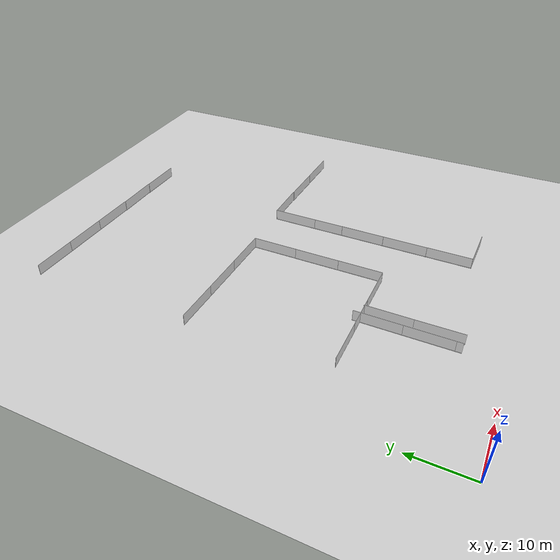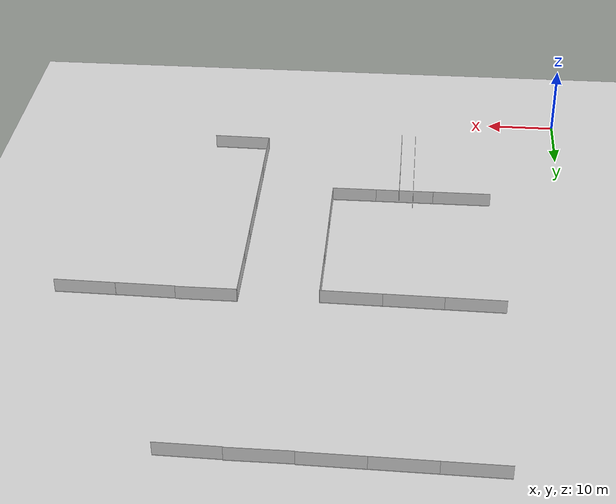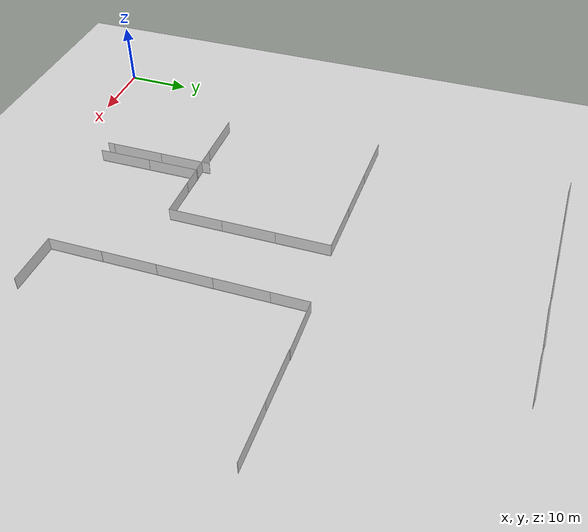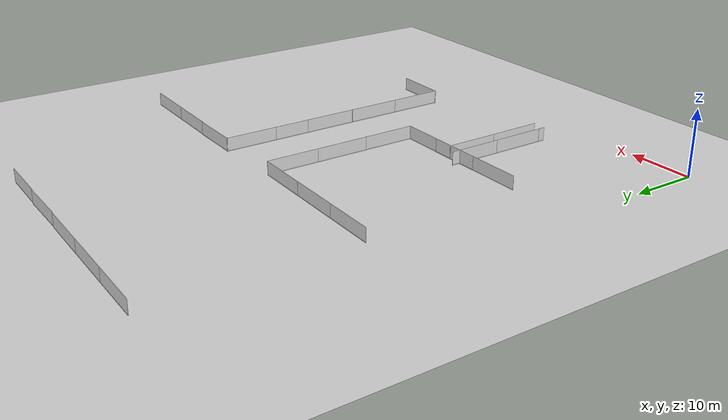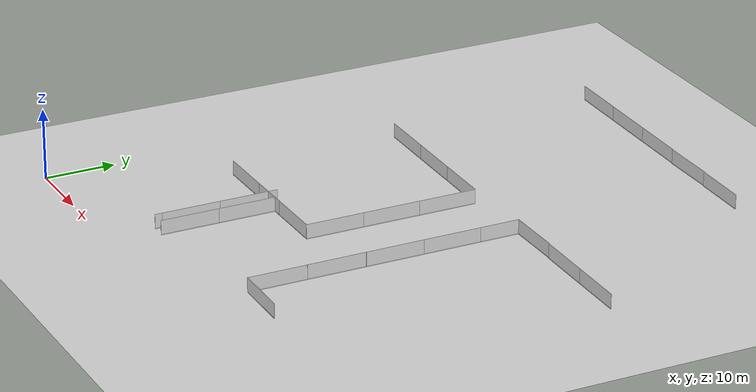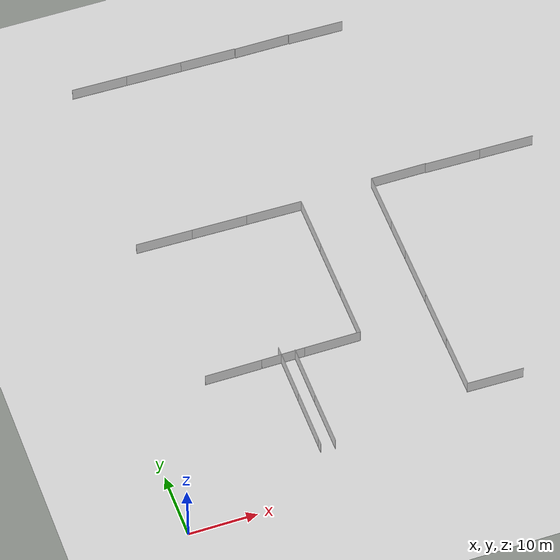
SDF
<sdf version="1.6">
 <world name="default">
  <model name="ground_plane">
   <static>1</static>
   <link name="link">
    <collision name="collision">
     <geometry><plane><normal>0 0 1</normal><size>100 100</size></plane></geometry>
     <surface><friction><ode><mu>100</mu><mu2>50</mu2></ode></friction></surface>
    </collision>
    <visual name="visual">
     <cast_shadows>0</cast_shadows>
     <geometry><plane><normal>0 0 1</normal><size>100 100</size></plane></geometry>
     <material>
      <script><uri>file://media/materials/scripts/gazebo.material</uri><name>Gazebo/Grey</name></script>
     </material>
    </visual>
    <velocity_decay><linear>0</linear><angular>0</angular></velocity_decay>
   </link>
  </model>
  <model name="full_wall_55_8295_2090_clone_clone_0_clone">
   <link name="link">
    <inertial>
     <mass>50</mass>
     <inertia><ixx>1</ixx><ixy>0</ixy><ixz>0</ixz><iyy>1</iyy><iyz>0</iyz><izz>1</izz></inertia>
    </inertial>
    <visual name="bottom_frame">
     <pose>0 0 0.05 0 -0 0</pose>
     <geometry><box><size>0.055 8.295 0.1</size></box></geometry>
     <material>
      <script><uri>model://base_materials/color/scripts</uri><name>hsr_color/white</name></script>
     </material>
    </visual>
    <collision name="collision_bottom_frame">
     <pose>0 0 0.05 0 -0 0</pose>
     <geometry><box><size>0.055 8.295 0.1</size></box></geometry>
    </collision>
    <visual name="wall">
     <pose>0 0 1.095 0 -0 0</pose>
     <geometry><box><size>0.055 8.295 1.99</size></box></geometry>
     <material>
      <script>
       <uri>model://base_materials/wall/scripts</uri>
       <uri>model://base_materials/wall/textures</uri>
       <name>wall/white_noise</name>
      </script>
     </material>
    </visual>
    <collision name="collision_wall">
     <pose>0 0 1.095 0 -0 0</pose>
     <geometry><box><size>0.055 8.295 1.99</size></box></geometry>
    </collision>
    <velocity_decay><linear>0</linear><angular>0</angular></velocity_decay>
   </link>
   <static>1</static>
   <pose>14.493 23.0584 0 0 -0 1.5723</pose>
  </model>
  <model name="full_wall_55_8295_2090_clone_clone_0_clone_clone">
   <link name="link">
    <inertial>
     <mass>50</mass>
     <inertia><ixx>1</ixx><ixy>0</ixy><ixz>0</ixz><iyy>1</iyy><iyz>0</iyz><izz>1</izz></inertia>
    </inertial>
    <visual name="bottom_frame">
     <pose>0 0 0.05 0 -0 0</pose>
     <geometry><box><size>0.055 8.295 0.1</size></box></geometry>
     <material>
      <script><uri>model://base_materials/color/scripts</uri><name>hsr_color/white</name></script>
     </material>
    </visual>
    <collision name="collision_bottom_frame">
     <pose>0 0 0.05 0 -0 0</pose>
     <geometry><box><size>0.055 8.295 0.1</size></box></geometry>
    </collision>
    <visual name="wall">
     <pose>0 0 1.095 0 -0 0</pose>
     <geometry><box><size>0.055 8.295 1.99</size></box></geometry>
     <material>
      <script>
       <uri>model://base_materials/wall/scripts</uri>
       <uri>model://base_materials/wall/textures</uri>
       <name>wall/white_noise</name>
      </script>
     </material>
    </visual>
    <collision name="collision_wall">
     <pose>0 0 1.095 0 -0 0</pose>
     <geometry><box><size>0.055 8.295 1.99</size></box></geometry>
    </collision>
    <velocity_decay><linear>0</linear><angular>0</angular></velocity_decay>
   </link>
   <static>1</static>
   <pose>22.8087 23.0825 0 0 -0 1.5723</pose>
  </model>
  <model name="full_wall_55_8295_2090_0_clone_clone">
   <link name="link">
    <inertial>
     <mass>50</mass>
     <inertia><ixx>1</ixx><ixy>0</ixy><ixz>0</ixz><iyy>1</iyy><iyz>0</iyz><izz>1</izz></inertia>
    </inertial>
    <visual name="bottom_frame">
     <pose>0 0 0.05 0 -0 0</pose>
     <geometry><box><size>0.055 8.295 0.1</size></box></geometry>
     <material>
      <script><uri>model://base_materials/color/scripts</uri><name>hsr_color/white</name></script>
     </material>
    </visual>
    <collision name="collision_bottom_frame">
     <pose>0 0 0.05 0 -0 0</pose>
     <geometry><box><size>0.055 8.295 0.1</size></box></geometry>
    </collision>
    <visual name="wall">
     <pose>0 0 1.095 0 -0 0</pose>
     <geometry><box><size>0.055 8.295 1.99</size></box></geometry>
     <material>
      <script>
       <uri>model://base_materials/wall/scripts</uri>
       <uri>model://base_materials/wall/textures</uri>
       <name>wall/white_noise</name>
      </script>
     </material>
    </visual>
    <collision name="collision_wall">
     <pose>0 0 1.095 0 -0 0</pose>
     <geometry><box><size>0.055 8.295 1.99</size></box></geometry>
    </collision>
    <velocity_decay><linear>0</linear><angular>0</angular></velocity_decay>
   </link>
   <static>1</static>
   <pose>21.5509 20.2375 0 0 -0 0</pose>
  </model>
  <model name="full_wall_55_8295_2090_0_clone_clone_clone">
   <link name="link">
    <inertial>
     <mass>50</mass>
     <inertia><ixx>1</ixx><ixy>0</ixy><ixz>0</ixz><iyy>1</iyy><iyz>0</iyz><izz>1</izz></inertia>
    </inertial>
    <visual name="bottom_frame">
     <pose>0 0 0.05 0 -0 0</pose>
     <geometry><box><size>0.055 8.295 0.1</size></box></geometry>
     <material>
      <script><uri>model://base_materials/color/scripts</uri><name>hsr_color/white</name></script>
     </material>
    </visual>
    <collision name="collision_bottom_frame">
     <pose>0 0 0.05 0 -0 0</pose>
     <geometry><box><size>0.055 8.295 0.1</size></box></geometry>
    </collision>
    <visual name="wall">
     <pose>0 0 1.095 0 -0 0</pose>
     <geometry><box><size>0.055 8.295 1.99</size></box></geometry>
     <material>
      <script>
       <uri>model://base_materials/wall/scripts</uri>
       <uri>model://base_materials/wall/textures</uri>
       <name>wall/white_noise</name>
      </script>
     </material>
    </visual>
    <collision name="collision_wall">
     <pose>0 0 1.095 0 -0 0</pose>
     <geometry><box><size>0.055 8.295 1.99</size></box></geometry>
    </collision>
    <velocity_decay><linear>0</linear><angular>0</angular></velocity_decay>
   </link>
   <static>1</static>
   <pose>21.5464 11.9711 0 0 -0 0</pose>
  </model>
  <model name="full_wall_55_8295_2090_0_clone_clone_clone_clone">
   <link name="link">
    <inertial>
     <mass>50</mass>
     <inertia><ixx>1</ixx><ixy>0</ixy><ixz>0</ixz><iyy>1</iyy><iyz>0</iyz><izz>1</izz></inertia>
    </inertial>
    <visual name="bottom_frame">
     <pose>0 0 0.05 0 -0 0</pose>
     <geometry><box><size>0.055 8.295 0.1</size></box></geometry>
     <material>
      <script><uri>model://base_materials/color/scripts</uri><name>hsr_color/white</name></script>
     </material>
    </visual>
    <collision name="collision_bottom_frame">
     <pose>0 0 0.05 0 -0 0</pose>
     <geometry><box><size>0.055 8.295 0.1</size></box></geometry>
    </collision>
    <visual name="wall">
     <pose>0 0 1.095 0 -0 0</pose>
     <geometry><box><size>0.055 8.295 1.99</size></box></geometry>
     <material>
      <script>
       <uri>model://base_materials/wall/scripts</uri>
       <uri>model://base_materials/wall/textures</uri>
       <name>wall/white_noise</name>
      </script>
     </material>
    </visual>
    <collision name="collision_wall">
     <pose>0 0 1.095 0 -0 0</pose>
     <geometry><box><size>0.055 8.295 1.99</size></box></geometry>
    </collision>
    <velocity_decay><linear>0</linear><angular>0</angular></velocity_decay>
   </link>
   <static>1</static>
   <pose>23.6274 10.8649 0 0 -0 0.00526</pose>
  </model>
  <model name="full_wall_55_8295_2090_0_clone_clone_clone_clone_clone">
   <link name="link">
    <inertial>
     <mass>50</mass>
     <inertia><ixx>1</ixx><ixy>0</ixy><ixz>0</ixz><iyy>1</iyy><iyz>0</iyz><izz>1</izz></inertia>
    </inertial>
    <visual name="bottom_frame">
     <pose>0 0 0.05 0 -0 0</pose>
     <geometry><box><size>0.055 8.295 0.1</size></box></geometry>
     <material>
      <script><uri>model://base_materials/color/scripts</uri><name>hsr_color/white</name></script>
     </material>
    </visual>
    <collision name="collision_bottom_frame">
     <pose>0 0 0.05 0 -0 0</pose>
     <geometry><box><size>0.055 8.295 0.1</size></box></geometry>
    </collision>
    <visual name="wall">
     <pose>0 0 1.095 0 -0 0</pose>
     <geometry><box><size>0.055 8.295 1.99</size></box></geometry>
     <material>
      <script>
       <uri>model://base_materials/wall/scripts</uri>
       <uri>model://base_materials/wall/textures</uri>
       <name>wall/white_noise</name>
      </script>
     </material>
    </visual>
    <collision name="collision_wall">
     <pose>0 0 1.095 0 -0 0</pose>
     <geometry><box><size>0.055 8.295 1.99</size></box></geometry>
    </collision>
    <velocity_decay><linear>0</linear><angular>0</angular></velocity_decay>
   </link>
   <static>1</static>
   <pose>23.6037 19.0736 0 0 -0 0</pose>
  </model>
  <model name="full_wall_55_900_2090_clone_0_clone_clone_clone_0_clone_0">
   <link name="link">
    <inertial>
     <mass>50</mass>
     <inertia><ixx>1</ixx><ixy>0</ixy><ixz>0</ixz><iyy>1</iyy><iyz>0</iyz><izz>1</izz></inertia>
    </inertial>
    <visual name="bottom_frame">
     <pose>0 0 0.05 0 -0 0</pose>
     <geometry><box><size>0.055 1.04 0.1</size></box></geometry>
     <material>
      <script><uri>model://base_materials/color/scripts</uri><name>hsr_color/white</name></script>
     </material>
    </visual>
    <collision name="collision_bottom_frame">
     <pose>0 0 0.05 0 -0 0</pose>
     <geometry><box><size>0.055 1.04 0.1</size></box></geometry>
    </collision>
    <visual name="wall">
     <pose>0 0 1.095 0 -0 0</pose>
     <geometry><box><size>0.055 1.04 1.99</size></box></geometry>
     <material>
      <script>
       <uri>model://base_materials/wall/scripts</uri>
       <uri>model://base_materials/wall/textures</uri>
       <name>wall/white_noise</name>
      </script>
     </material>
    </visual>
    <collision name="collision_wall">
     <pose>0 0 1.095 0 -0 0</pose>
     <geometry><box><size>0.055 1.04 1.99</size></box></geometry>
    </collision>
    <velocity_decay><linear>0</linear><angular>0</angular></velocity_decay>
   </link>
   <static>1</static>
   <pose>21.5452 7.29912 0 0 -0 0</pose>
  </model>
  <model name="full_wall_55_8295_2090_0_clone_clone_clone_0">
   <link name="link">
    <inertial>
     <mass>50</mass>
     <inertia><ixx>1</ixx><ixy>0</ixy><ixz>0</ixz><iyy>1</iyy><iyz>0</iyz><izz>1</izz></inertia>
    </inertial>
    <visual name="bottom_frame">
     <pose>0 0 0.05 0 -0 0</pose>
     <geometry><box><size>0.055 8.295 0.1</size></box></geometry>
     <material>
      <script><uri>model://base_materials/color/scripts</uri><name>hsr_color/white</name></script>
     </material>
    </visual>
    <collision name="collision_bottom_frame">
     <pose>0 0 0.05 0 -0 0</pose>
     <geometry><box><size>0.055 8.295 0.1</size></box></geometry>
    </collision>
    <visual name="wall">
     <pose>0 0 1.095 0 -0 0</pose>
     <geometry><box><size>0.055 8.295 1.99</size></box></geometry>
     <material>
      <script>
       <uri>model://base_materials/wall/scripts</uri>
       <uri>model://base_materials/wall/textures</uri>
       <name>wall/white_noise</name>
      </script>
     </material>
    </visual>
    <collision name="collision_wall">
     <pose>0 0 1.095 0 -0 0</pose>
     <geometry><box><size>0.055 8.295 1.99</size></box></geometry>
    </collision>
    <velocity_decay><linear>0</linear><angular>0</angular></velocity_decay>
   </link>
   <static>1</static>
   <pose>33.2651 27.2 0 0 -0 0</pose>
  </model>
  <model name="full_wall_55_8295_2090_clone_clone_0_clone_clone_clone">
   <link name="link">
    <inertial>
     <mass>50</mass>
     <inertia><ixx>1</ixx><ixy>0</ixy><ixz>0</ixz><iyy>1</iyy><iyz>0</iyz><izz>1</izz></inertia>
    </inertial>
    <visual name="bottom_frame">
     <pose>0 0 0.05 0 -0 0</pose>
     <geometry><box><size>0.055 8.295 0.1</size></box></geometry>
     <material>
      <script><uri>model://base_materials/color/scripts</uri><name>hsr_color/white</name></script>
     </material>
    </visual>
    <collision name="collision_bottom_frame">
     <pose>0 0 0.05 0 -0 0</pose>
     <geometry><box><size>0.055 8.295 0.1</size></box></geometry>
    </collision>
    <visual name="wall">
     <pose>0 0 1.095 0 -0 0</pose>
     <geometry><box><size>0.055 8.295 1.99</size></box></geometry>
     <material>
      <script>
       <uri>model://base_materials/wall/scripts</uri>
       <uri>model://base_materials/wall/textures</uri>
       <name>wall/white_noise</name>
      </script>
     </material>
    </visual>
    <collision name="collision_wall">
     <pose>0 0 1.095 0 -0 0</pose>
     <geometry><box><size>0.055 8.295 1.99</size></box></geometry>
    </collision>
    <velocity_decay><linear>0</linear><angular>0</angular></velocity_decay>
   </link>
   <static>1</static>
   <pose>29.1342 23.088 0 0 -0 1.5723</pose>
  </model>
  <model name="full_wall_55_8295_2090_0_clone_clone_clone_clone_0">
   <link name="link">
    <inertial>
     <mass>50</mass>
     <inertia><ixx>1</ixx><ixy>0</ixy><ixz>0</ixz><iyy>1</iyy><iyz>0</iyz><izz>1</izz></inertia>
    </inertial>
    <visual name="bottom_frame">
     <pose>0 0 0.05 0 -0 0</pose>
     <geometry><box><size>0.055 8.295 0.1</size></box></geometry>
     <material>
      <script><uri>model://base_materials/color/scripts</uri><name>hsr_color/white</name></script>
     </material>
    </visual>
    <collision name="collision_bottom_frame">
     <pose>0 0 0.05 0 -0 0</pose>
     <geometry><box><size>0.055 8.295 0.1</size></box></geometry>
    </collision>
    <visual name="wall">
     <pose>0 0 1.095 0 -0 0</pose>
     <geometry><box><size>0.055 8.295 1.99</size></box></geometry>
     <material>
      <script>
       <uri>model://base_materials/wall/scripts</uri>
       <uri>model://base_materials/wall/textures</uri>
       <name>wall/white_noise</name>
      </script>
     </material>
    </visual>
    <collision name="collision_wall">
     <pose>0 0 1.095 0 -0 0</pose>
     <geometry><box><size>0.055 8.295 1.99</size></box></geometry>
    </collision>
    <velocity_decay><linear>0</linear><angular>0</angular></velocity_decay>
   </link>
   <static>1</static>
   <pose>44.2015 13.8415 0 0 -0 0</pose>
  </model>
  <model name="full_wall_55_8295_2090_0_clone_clone_clone_clone_0_clone">
   <link name="link">
    <inertial>
     <mass>50</mass>
     <inertia><ixx>1</ixx><ixy>0</ixy><ixz>0</ixz><iyy>1</iyy><iyz>0</iyz><izz>1</izz></inertia>
    </inertial>
    <visual name="bottom_frame">
     <pose>0 0 0.05 0 -0 0</pose>
     <geometry><box><size>0.055 8.295 0.1</size></box></geometry>
     <material>
      <script><uri>model://base_materials/color/scripts</uri><name>hsr_color/white</name></script>
     </material>
    </visual>
    <collision name="collision_bottom_frame">
     <pose>0 0 0.05 0 -0 0</pose>
     <geometry><box><size>0.055 8.295 0.1</size></box></geometry>
    </collision>
    <visual name="wall">
     <pose>0 0 1.095 0 -0 0</pose>
     <geometry><box><size>0.055 8.295 1.99</size></box></geometry>
     <material>
      <script>
       <uri>model://base_materials/wall/scripts</uri>
       <uri>model://base_materials/wall/textures</uri>
       <name>wall/white_noise</name>
      </script>
     </material>
    </visual>
    <collision name="collision_wall">
     <pose>0 0 1.095 0 -0 0</pose>
     <geometry><box><size>0.055 8.295 1.99</size></box></geometry>
    </collision>
    <velocity_decay><linear>0</linear><angular>0</angular></velocity_decay>
   </link>
   <static>1</static>
   <pose>44.1814 22.1514 0 0 -0 0</pose>
  </model>
  <model name="full_wall_55_8295_2090_0_clone_clone_clone_clone_0_clone_0">
   <link name="link">
    <inertial>
     <mass>50</mass>
     <inertia><ixx>1</ixx><ixy>0</ixy><ixz>0</ixz><iyy>1</iyy><iyz>0</iyz><izz>1</izz></inertia>
    </inertial>
    <visual name="bottom_frame">
     <pose>0 0 0.05 0 -0 0</pose>
     <geometry><box><size>0.055 8.295 0.1</size></box></geometry>
     <material>
      <script><uri>model://base_materials/color/scripts</uri><name>hsr_color/white</name></script>
     </material>
    </visual>
    <collision name="collision_bottom_frame">
     <pose>0 0 0.05 0 -0 0</pose>
     <geometry><box><size>0.055 8.295 0.1</size></box></geometry>
    </collision>
    <visual name="wall">
     <pose>0 0 1.095 0 -0 0</pose>
     <geometry><box><size>0.055 8.295 1.99</size></box></geometry>
     <material>
      <script>
       <uri>model://base_materials/wall/scripts</uri>
       <uri>model://base_materials/wall/textures</uri>
       <name>wall/white_noise</name>
      </script>
     </material>
    </visual>
    <collision name="collision_wall">
     <pose>0 0 1.095 0 -0 0</pose>
     <geometry><box><size>0.055 8.295 1.99</size></box></geometry>
    </collision>
    <velocity_decay><linear>0</linear><angular>0</angular></velocity_decay>
   </link>
   <static>1</static>
   <pose>44.1817 30.4623 0 0 -0 0</pose>
  </model>
  <model name="full_wall_55_8295_2090_0_clone_clone_clone_0_clone">
   <link name="link">
    <inertial>
     <mass>50</mass>
     <inertia><ixx>1</ixx><ixy>0</ixy><ixz>0</ixz><iyy>1</iyy><iyz>0</iyz><izz>1</izz></inertia>
    </inertial>
    <visual name="bottom_frame">
     <pose>0 0 0.05 0 -0 0</pose>
     <geometry><box><size>0.055 8.295 0.1</size></box></geometry>
     <material>
      <script><uri>model://base_materials/color/scripts</uri><name>hsr_color/white</name></script>
     </material>
    </visual>
    <collision name="collision_bottom_frame">
     <pose>0 0 0.05 0 -0 0</pose>
     <geometry><box><size>0.055 8.295 0.1</size></box></geometry>
    </collision>
    <visual name="wall">
     <pose>0 0 1.095 0 -0 0</pose>
     <geometry><box><size>0.055 8.295 1.99</size></box></geometry>
     <material>
      <script>
       <uri>model://base_materials/wall/scripts</uri>
       <uri>model://base_materials/wall/textures</uri>
       <name>wall/white_noise</name>
      </script>
     </material>
    </visual>
    <collision name="collision_wall">
     <pose>0 0 1.095 0 -0 0</pose>
     <geometry><box><size>0.055 8.295 1.99</size></box></geometry>
    </collision>
    <velocity_decay><linear>0</linear><angular>0</angular></velocity_decay>
   </link>
   <static>1</static>
   <pose>33.2528 35.3903 0 0 -0 0</pose>
  </model>
  <model name="full_wall_55_8295_2090_clone_clone_0_clone_clone_0_clone_clone_clone_0">
   <link name="link">
    <inertial>
     <mass>50</mass>
     <inertia><ixx>1</ixx><ixy>0</ixy><ixz>0</ixz><iyy>1</iyy><iyz>0</iyz><izz>1</izz></inertia>
    </inertial>
    <visual name="bottom_frame">
     <pose>0 0 0.05 0 -0 0</pose>
     <geometry><box><size>0.055 8.295 0.1</size></box></geometry>
     <material>
      <script><uri>model://base_materials/color/scripts</uri><name>hsr_color/white</name></script>
     </material>
    </visual>
    <collision name="collision_bottom_frame">
     <pose>0 0 0.05 0 -0 0</pose>
     <geometry><box><size>0.055 8.295 0.1</size></box></geometry>
    </collision>
    <visual name="wall">
     <pose>0 0 1.095 0 -0 0</pose>
     <geometry><box><size>0.055 8.295 1.99</size></box></geometry>
     <material>
      <script>
       <uri>model://base_materials/wall/scripts</uri>
       <uri>model://base_materials/wall/textures</uri>
       <name>wall/white_noise</name>
      </script>
     </material>
    </visual>
    <collision name="collision_wall">
     <pose>0 0 1.095 0 -0 0</pose>
     <geometry><box><size>0.055 8.295 1.99</size></box></geometry>
    </collision>
    <velocity_decay><linear>0</linear><angular>0</angular></velocity_decay>
   </link>
   <static>1</static>
   <pose>48.2674 9.64898 0 0 -0 1.55369</pose>
  </model>
  <model name="full_wall_55_8295_2090_0_clone_clone_clone_clone_0_clone_0_clone">
   <link name="link">
    <inertial>
     <mass>50</mass>
     <inertia><ixx>1</ixx><ixy>0</ixy><ixz>0</ixz><iyy>1</iyy><iyz>0</iyz><izz>1</izz></inertia>
    </inertial>
    <visual name="bottom_frame">
     <pose>0 0 0.05 0 -0 0</pose>
     <geometry><box><size>0.055 8.295 0.1</size></box></geometry>
     <material>
      <script><uri>model://base_materials/color/scripts</uri><name>hsr_color/white</name></script>
     </material>
    </visual>
    <collision name="collision_bottom_frame">
     <pose>0 0 0.05 0 -0 0</pose>
     <geometry><box><size>0.055 8.295 0.1</size></box></geometry>
    </collision>
    <visual name="wall">
     <pose>0 0 1.095 0 -0 0</pose>
     <geometry><box><size>0.055 8.295 1.99</size></box></geometry>
     <material>
      <script>
       <uri>model://base_materials/wall/scripts</uri>
       <uri>model://base_materials/wall/textures</uri>
       <name>wall/white_noise</name>
      </script>
     </material>
    </visual>
    <collision name="collision_wall">
     <pose>0 0 1.095 0 -0 0</pose>
     <geometry><box><size>0.055 8.295 1.99</size></box></geometry>
    </collision>
    <velocity_decay><linear>0</linear><angular>0</angular></velocity_decay>
   </link>
   <static>1</static>
   <pose>44.1719 38.6554 0 0 -0 0</pose>
  </model>
  <model name="full_wall_55_8295_2090_0_clone_clone_clone_0_clone_clone">
   <link name="link">
    <inertial>
     <mass>50</mass>
     <inertia><ixx>1</ixx><ixy>0</ixy><ixz>0</ixz><iyy>1</iyy><iyz>0</iyz><izz>1</izz></inertia>
    </inertial>
    <visual name="bottom_frame">
     <pose>0 0 0.05 0 -0 0</pose>
     <geometry><box><size>0.055 8.295 0.1</size></box></geometry>
     <material>
      <script><uri>model://base_materials/color/scripts</uri><name>hsr_color/white</name></script>
     </material>
    </visual>
    <collision name="collision_bottom_frame">
     <pose>0 0 0.05 0 -0 0</pose>
     <geometry><box><size>0.055 8.295 0.1</size></box></geometry>
    </collision>
    <visual name="wall">
     <pose>0 0 1.095 0 -0 0</pose>
     <geometry><box><size>0.055 8.295 1.99</size></box></geometry>
     <material>
      <script>
       <uri>model://base_materials/wall/scripts</uri>
       <uri>model://base_materials/wall/textures</uri>
       <name>wall/white_noise</name>
      </script>
     </material>
    </visual>
    <collision name="collision_wall">
     <pose>0 0 1.095 0 -0 0</pose>
     <geometry><box><size>0.055 8.295 1.99</size></box></geometry>
    </collision>
    <velocity_decay><linear>0</linear><angular>0</angular></velocity_decay>
   </link>
   <static>1</static>
   <pose>33.2666 43.6676 0 0 -0 0</pose>
  </model>
  <model name="full_wall_55_8295_2090_0_clone_clone_clone_0_clone_clone_0">
   <link name="link">
    <inertial>
     <mass>50</mass>
     <inertia><ixx>1</ixx><ixy>0</ixy><ixz>0</ixz><iyy>1</iyy><iyz>0</iyz><izz>1</izz></inertia>
    </inertial>
    <visual name="bottom_frame">
     <pose>0 0 0.05 0 -0 0</pose>
     <geometry><box><size>0.055 8.295 0.1</size></box></geometry>
     <material>
      <script><uri>model://base_materials/color/scripts</uri><name>hsr_color/white</name></script>
     </material>
    </visual>
    <collision name="collision_bottom_frame">
     <pose>0 0 0.05 0 -0 0</pose>
     <geometry><box><size>0.055 8.295 0.1</size></box></geometry>
    </collision>
    <visual name="wall">
     <pose>0 0 1.095 0 -0 0</pose>
     <geometry><box><size>0.055 8.295 1.99</size></box></geometry>
     <material>
      <script>
       <uri>model://base_materials/wall/scripts</uri>
       <uri>model://base_materials/wall/textures</uri>
       <name>wall/white_noise</name>
      </script>
     </material>
    </visual>
    <collision name="collision_wall">
     <pose>0 0 1.095 0 -0 0</pose>
     <geometry><box><size>0.055 8.295 1.99</size></box></geometry>
    </collision>
    <velocity_decay><linear>0</linear><angular>0</angular></velocity_decay>
   </link>
   <static>1</static>
   <pose>44.1713 44.3114 0 0 -0 0</pose>
  </model>
  <model name="full_wall_55_8295_2090_clone_clone_0_clone_clone_0_clone_clone_0">
   <link name="link">
    <inertial>
     <mass>50</mass>
     <inertia><ixx>1</ixx><ixy>0</ixy><ixz>0</ixz><iyy>1</iyy><iyz>0</iyz><izz>1</izz></inertia>
    </inertial>
    <visual name="bottom_frame">
     <pose>0 0 0.05 0 -0 0</pose>
     <geometry><box><size>0.055 8.295 0.1</size></box></geometry>
     <material>
      <script><uri>model://base_materials/color/scripts</uri><name>hsr_color/white</name></script>
     </material>
    </visual>
    <collision name="collision_bottom_frame">
     <pose>0 0 0.05 0 -0 0</pose>
     <geometry><box><size>0.055 8.295 0.1</size></box></geometry>
    </collision>
    <visual name="wall">
     <pose>0 0 1.095 0 -0 0</pose>
     <geometry><box><size>0.055 8.295 1.99</size></box></geometry>
     <material>
      <script>
       <uri>model://base_materials/wall/scripts</uri>
       <uri>model://base_materials/wall/textures</uri>
       <name>wall/white_noise</name>
      </script>
     </material>
    </visual>
    <collision name="collision_wall">
     <pose>0 0 1.095 0 -0 0</pose>
     <geometry><box><size>0.055 8.295 1.99</size></box></geometry>
    </collision>
    <velocity_decay><linear>0</linear><angular>0</angular></velocity_decay>
   </link>
   <static>1</static>
   <pose>29.0895 47.8831 0 0 -0 1.55369</pose>
  </model>
  <model name="full_wall_55_8295_2090_clone_clone_0_clone_clone_0_clone_clone_0_clone">
   <link name="link">
    <inertial>
     <mass>50</mass>
     <inertia><ixx>1</ixx><ixy>0</ixy><ixz>0</ixz><iyy>1</iyy><iyz>0</iyz><izz>1</izz></inertia>
    </inertial>
    <visual name="bottom_frame">
     <pose>0 0 0.05 0 -0 0</pose>
     <geometry><box><size>0.055 8.295 0.1</size></box></geometry>
     <material>
      <script><uri>model://base_materials/color/scripts</uri><name>hsr_color/white</name></script>
     </material>
    </visual>
    <collision name="collision_bottom_frame">
     <pose>0 0 0.05 0 -0 0</pose>
     <geometry><box><size>0.055 8.295 0.1</size></box></geometry>
    </collision>
    <visual name="wall">
     <pose>0 0 1.095 0 -0 0</pose>
     <geometry><box><size>0.055 8.295 1.99</size></box></geometry>
     <material>
      <script>
       <uri>model://base_materials/wall/scripts</uri>
       <uri>model://base_materials/wall/textures</uri>
       <name>wall/white_noise</name>
      </script>
     </material>
    </visual>
    <collision name="collision_wall">
     <pose>0 0 1.095 0 -0 0</pose>
     <geometry><box><size>0.055 8.295 1.99</size></box></geometry>
    </collision>
    <velocity_decay><linear>0</linear><angular>0</angular></velocity_decay>
   </link>
   <static>1</static>
   <pose>20.9225 48.0145 0 0 -0 1.55369</pose>
  </model>
  <model name="full_wall_55_8295_2090_clone_clone_0_clone_clone_0_clone_clone_0_clone_0">
   <link name="link">
    <inertial>
     <mass>50</mass>
     <inertia><ixx>1</ixx><ixy>0</ixy><ixz>0</ixz><iyy>1</iyy><iyz>0</iyz><izz>1</izz></inertia>
    </inertial>
    <visual name="bottom_frame">
     <pose>0 0 0.05 0 -0 0</pose>
     <geometry><box><size>0.055 8.295 0.1</size></box></geometry>
     <material>
      <script><uri>model://base_materials/color/scripts</uri><name>hsr_color/white</name></script>
     </material>
    </visual>
    <collision name="collision_bottom_frame">
     <pose>0 0 0.05 0 -0 0</pose>
     <geometry><box><size>0.055 8.295 0.1</size></box></geometry>
    </collision>
    <visual name="wall">
     <pose>0 0 1.095 0 -0 0</pose>
     <geometry><box><size>0.055 8.295 1.99</size></box></geometry>
     <material>
      <script>
       <uri>model://base_materials/wall/scripts</uri>
       <uri>model://base_materials/wall/textures</uri>
       <name>wall/white_noise</name>
      </script>
     </material>
    </visual>
    <collision name="collision_wall">
     <pose>0 0 1.095 0 -0 0</pose>
     <geometry><box><size>0.055 8.295 1.99</size></box></geometry>
    </collision>
    <velocity_decay><linear>0</linear><angular>0</angular></velocity_decay>
   </link>
   <static>1</static>
   <pose>12.7735 48.1484 0 0 -0 1.55369</pose>
  </model>
  <model name="full_wall_55_8295_2090_clone_clone_0_clone_clone_0_clone_clone_0_clone_2">
   <link name="link">
    <inertial>
     <mass>50</mass>
     <inertia><ixx>1</ixx><ixy>0</ixy><ixz>0</ixz><iyy>1</iyy><iyz>0</iyz><izz>1</izz></inertia>
    </inertial>
    <visual name="bottom_frame">
     <pose>0 0 0.05 0 -0 0</pose>
     <geometry><box><size>0.055 8.295 0.1</size></box></geometry>
     <material>
      <script><uri>model://base_materials/color/scripts</uri><name>hsr_color/white</name></script>
     </material>
    </visual>
    <collision name="collision_bottom_frame">
     <pose>0 0 0.05 0 -0 0</pose>
     <geometry><box><size>0.055 8.295 0.1</size></box></geometry>
    </collision>
    <visual name="wall">
     <pose>0 0 1.095 0 -0 0</pose>
     <geometry><box><size>0.055 8.295 1.99</size></box></geometry>
     <material>
      <script>
       <uri>model://base_materials/wall/scripts</uri>
       <uri>model://base_materials/wall/textures</uri>
       <name>wall/white_noise</name>
      </script>
     </material>
    </visual>
    <collision name="collision_wall">
     <pose>0 0 1.095 0 -0 0</pose>
     <geometry><box><size>0.055 8.295 1.99</size></box></geometry>
    </collision>
    <velocity_decay><linear>0</linear><angular>0</angular></velocity_decay>
   </link>
   <static>1</static>
   <pose>48.2896 48.3877 0 0 -0 1.5707</pose>
  </model>
  <model name="full_wall_55_8295_2090_clone_clone_0_clone_clone_0_clone_clone_0_clone_3">
   <link name="link">
    <inertial>
     <mass>50</mass>
     <inertia><ixx>1</ixx><ixy>0</ixy><ixz>0</ixz><iyy>1</iyy><iyz>0</iyz><izz>1</izz></inertia>
    </inertial>
    <visual name="bottom_frame">
     <pose>0 0 0.05 0 -0 0</pose>
     <geometry><box><size>0.055 8.295 0.1</size></box></geometry>
     <material>
      <script><uri>model://base_materials/color/scripts</uri><name>hsr_color/white</name></script>
     </material>
    </visual>
    <collision name="collision_bottom_frame">
     <pose>0 0 0.05 0 -0 0</pose>
     <geometry><box><size>0.055 8.295 0.1</size></box></geometry>
    </collision>
    <visual name="wall">
     <pose>0 0 1.095 0 -0 0</pose>
     <geometry><box><size>0.055 8.295 1.99</size></box></geometry>
     <material>
      <script>
       <uri>model://base_materials/wall/scripts</uri>
       <uri>model://base_materials/wall/textures</uri>
       <name>wall/white_noise</name>
      </script>
     </material>
    </visual>
    <collision name="collision_wall">
     <pose>0 0 1.095 0 -0 0</pose>
     <geometry><box><size>0.055 8.295 1.99</size></box></geometry>
    </collision>
    <velocity_decay><linear>0</linear><angular>0</angular></velocity_decay>
   </link>
   <static>1</static>
   <pose>56.5179 48.2417 0 0 -0 1.55369</pose>
  </model>
  <model name="full_wall_55_8295_2090_clone_clone_0_clone_clone_0_clone_clone_0_clone_3_clone">
   <link name="link">
    <inertial>
     <mass>50</mass>
     <inertia><ixx>1</ixx><ixy>0</ixy><ixz>0</ixz><iyy>1</iyy><iyz>0</iyz><izz>1</izz></inertia>
    </inertial>
    <visual name="bottom_frame">
     <pose>0 0 0.05 0 -0 0</pose>
     <geometry><box><size>0.055 8.295 0.1</size></box></geometry>
     <material>
      <script><uri>model://base_materials/color/scripts</uri><name>hsr_color/white</name></script>
     </material>
    </visual>
    <collision name="collision_bottom_frame">
     <pose>0 0 0.05 0 -0 0</pose>
     <geometry><box><size>0.055 8.295 0.1</size></box></geometry>
    </collision>
    <visual name="wall">
     <pose>0 0 1.095 0 -0 0</pose>
     <geometry><box><size>0.055 8.295 1.99</size></box></geometry>
     <material>
      <script>
       <uri>model://base_materials/wall/scripts</uri>
       <uri>model://base_materials/wall/textures</uri>
       <name>wall/white_noise</name>
      </script>
     </material>
    </visual>
    <collision name="collision_wall">
     <pose>0 0 1.095 0 -0 0</pose>
     <geometry><box><size>0.055 8.295 1.99</size></box></geometry>
    </collision>
    <velocity_decay><linear>0</linear><angular>0</angular></velocity_decay>
   </link>
   <static>1</static>
   <pose>64.604 48.1115 0 0 -0 1.55369</pose>
  </model>
  <model name="full_wall_55_8295_2090_clone_clone_0_clone_clone_0_clone_clone_0_clone_4">
   <link name="link">
    <inertial>
     <mass>50</mass>
     <inertia><ixx>1</ixx><ixy>0</ixy><ixz>0</ixz><iyy>1</iyy><iyz>0</iyz><izz>1</izz></inertia>
    </inertial>
    <visual name="bottom_frame">
     <pose>0 0 0.05 0 -0 0</pose>
     <geometry><box><size>0.055 8.295 0.1</size></box></geometry>
     <material>
      <script><uri>model://base_materials/color/scripts</uri><name>hsr_color/white</name></script>
     </material>
    </visual>
    <collision name="collision_bottom_frame">
     <pose>0 0 0.05 0 -0 0</pose>
     <geometry><box><size>0.055 8.295 0.1</size></box></geometry>
    </collision>
    <visual name="wall">
     <pose>0 0 1.095 0 -0 0</pose>
     <geometry><box><size>0.055 8.295 1.99</size></box></geometry>
     <material>
      <script>
       <uri>model://base_materials/wall/scripts</uri>
       <uri>model://base_materials/wall/textures</uri>
       <name>wall/white_noise</name>
      </script>
     </material>
    </visual>
    <collision name="collision_wall">
     <pose>0 0 1.095 0 -0 0</pose>
     <geometry><box><size>0.055 8.295 1.99</size></box></geometry>
    </collision>
    <velocity_decay><linear>0</linear><angular>0</angular></velocity_decay>
   </link>
   <static>1</static>
   <pose>37.8366 77.9106 0 0 -0 1.5707</pose>
  </model>
  <model name="full_wall_55_8295_2090_clone_clone_0_clone_clone_0_clone_clone_0_clone_4_clone">
   <link name="link">
    <inertial>
     <mass>50</mass>
     <inertia><ixx>1</ixx><ixy>0</ixy><ixz>0</ixz><iyy>1</iyy><iyz>0</iyz><izz>1</izz></inertia>
    </inertial>
    <visual name="bottom_frame">
     <pose>0 0 0.05 0 -0 0</pose>
     <geometry><box><size>0.055 8.295 0.1</size></box></geometry>
     <material>
      <script><uri>model://base_materials/color/scripts</uri><name>hsr_color/white</name></script>
     </material>
    </visual>
    <collision name="collision_bottom_frame">
     <pose>0 0 0.05 0 -0 0</pose>
     <geometry><box><size>0.055 8.295 0.1</size></box></geometry>
    </collision>
    <visual name="wall">
     <pose>0 0 1.095 0 -0 0</pose>
     <geometry><box><size>0.055 8.295 1.99</size></box></geometry>
     <material>
      <script>
       <uri>model://base_materials/wall/scripts</uri>
       <uri>model://base_materials/wall/textures</uri>
       <name>wall/white_noise</name>
      </script>
     </material>
    </visual>
    <collision name="collision_wall">
     <pose>0 0 1.095 0 -0 0</pose>
     <geometry><box><size>0.055 8.295 1.99</size></box></geometry>
    </collision>
    <velocity_decay><linear>0</linear><angular>0</angular></velocity_decay>
   </link>
   <static>1</static>
   <pose>29.5326 78.0557 0 0 -0 1.55369</pose>
  </model>
  <model name="full_wall_55_8295_2090_clone_clone_0_clone_clone_0_clone_clone_0_clone_4_clone_0">
   <link name="link">
    <inertial>
     <mass>50</mass>
     <inertia><ixx>1</ixx><ixy>0</ixy><ixz>0</ixz><iyy>1</iyy><iyz>0</iyz><izz>1</izz></inertia>
    </inertial>
    <visual name="bottom_frame">
     <pose>0 0 0.05 0 -0 0</pose>
     <geometry><box><size>0.055 8.295 0.1</size></box></geometry>
     <material>
      <script><uri>model://base_materials/color/scripts</uri><name>hsr_color/white</name></script>
     </material>
    </visual>
    <collision name="collision_bottom_frame">
     <pose>0 0 0.05 0 -0 0</pose>
     <geometry><box><size>0.055 8.295 0.1</size></box></geometry>
    </collision>
    <visual name="wall">
     <pose>0 0 1.095 0 -0 0</pose>
     <geometry><box><size>0.055 8.295 1.99</size></box></geometry>
     <material>
      <script>
       <uri>model://base_materials/wall/scripts</uri>
       <uri>model://base_materials/wall/textures</uri>
       <name>wall/white_noise</name>
      </script>
     </material>
    </visual>
    <collision name="collision_wall">
     <pose>0 0 1.095 0 -0 0</pose>
     <geometry><box><size>0.055 8.295 1.99</size></box></geometry>
    </collision>
    <velocity_decay><linear>0</linear><angular>0</angular></velocity_decay>
   </link>
   <static>1</static>
   <pose>21.2552 78.1904 0 0 -0 1.55369</pose>
  </model>
  <model name="full_wall_55_8295_2090_clone_clone_0_clone_clone_0_clone_clone_0_clone_4_clone_1">
   <link name="link">
    <inertial>
     <mass>50</mass>
     <inertia><ixx>1</ixx><ixy>0</ixy><ixz>0</ixz><iyy>1</iyy><iyz>0</iyz><izz>1</izz></inertia>
    </inertial>
    <visual name="bottom_frame">
     <pose>0 0 0.05 0 -0 0</pose>
     <geometry><box><size>0.055 8.295 0.1</size></box></geometry>
     <material>
      <script><uri>model://base_materials/color/scripts</uri><name>hsr_color/white</name></script>
     </material>
    </visual>
    <collision name="collision_bottom_frame">
     <pose>0 0 0.05 0 -0 0</pose>
     <geometry><box><size>0.055 8.295 0.1</size></box></geometry>
    </collision>
    <visual name="wall">
     <pose>0 0 1.095 0 -0 0</pose>
     <geometry><box><size>0.055 8.295 1.99</size></box></geometry>
     <material>
      <script>
       <uri>model://base_materials/wall/scripts</uri>
       <uri>model://base_materials/wall/textures</uri>
       <name>wall/white_noise</name>
      </script>
     </material>
    </visual>
    <collision name="collision_wall">
     <pose>0 0 1.095 0 -0 0</pose>
     <geometry><box><size>0.055 8.295 1.99</size></box></geometry>
    </collision>
    <velocity_decay><linear>0</linear><angular>0</angular></velocity_decay>
   </link>
   <static>1</static>
   <pose>13.0044 78.3346 0 0 -0 1.55369</pose>
  </model>
  <model name="full_wall_55_8295_2090_clone_clone_0_clone_clone_0_clone_clone_0_clone_4_clone_3">
   <link name="link">
    <inertial>
     <mass>50</mass>
     <inertia><ixx>1</ixx><ixy>0</ixy><ixz>0</ixz><iyy>1</iyy><iyz>0</iyz><izz>1</izz></inertia>
    </inertial>
    <visual name="bottom_frame">
     <pose>0 0 0.05 0 -0 0</pose>
     <geometry><box><size>0.055 8.295 0.1</size></box></geometry>
     <material>
      <script><uri>model://base_materials/color/scripts</uri><name>hsr_color/white</name></script>
     </material>
    </visual>
    <collision name="collision_bottom_frame">
     <pose>0 0 0.05 0 -0 0</pose>
     <geometry><box><size>0.055 8.295 0.1</size></box></geometry>
    </collision>
    <visual name="wall">
     <pose>0 0 1.095 0 -0 0</pose>
     <geometry><box><size>0.055 8.295 1.99</size></box></geometry>
     <material>
      <script>
       <uri>model://base_materials/wall/scripts</uri>
       <uri>model://base_materials/wall/textures</uri>
       <name>wall/white_noise</name>
      </script>
     </material>
    </visual>
    <collision name="collision_wall">
     <pose>0 0 1.095 0 -0 0</pose>
     <geometry><box><size>0.055 8.295 1.99</size></box></geometry>
    </collision>
    <velocity_decay><linear>0</linear><angular>0</angular></velocity_decay>
   </link>
   <static>1</static>
   <pose>46.1264 77.7621 0 0 -0 1.55369</pose>
  </model>
 </world>
</sdf>
